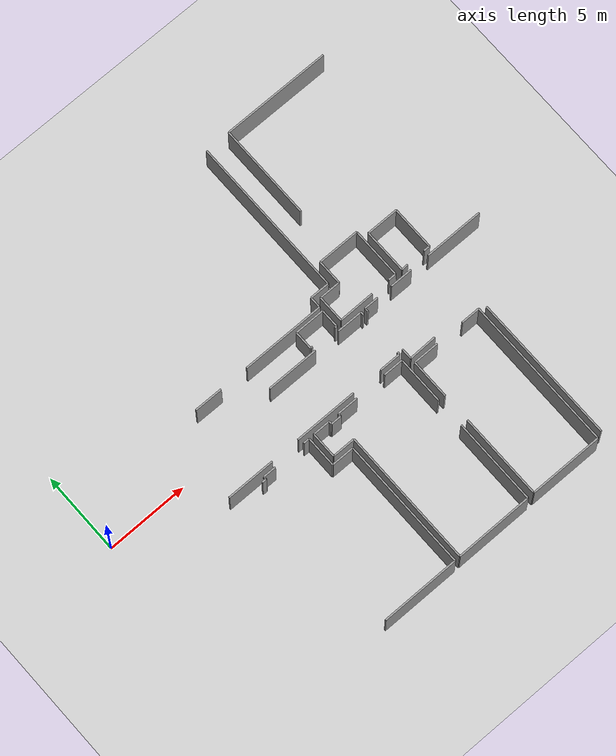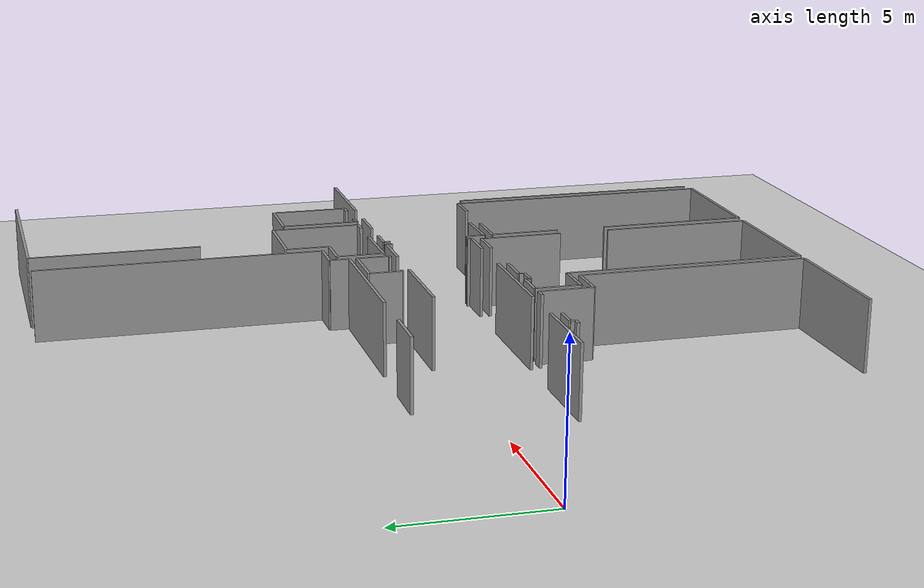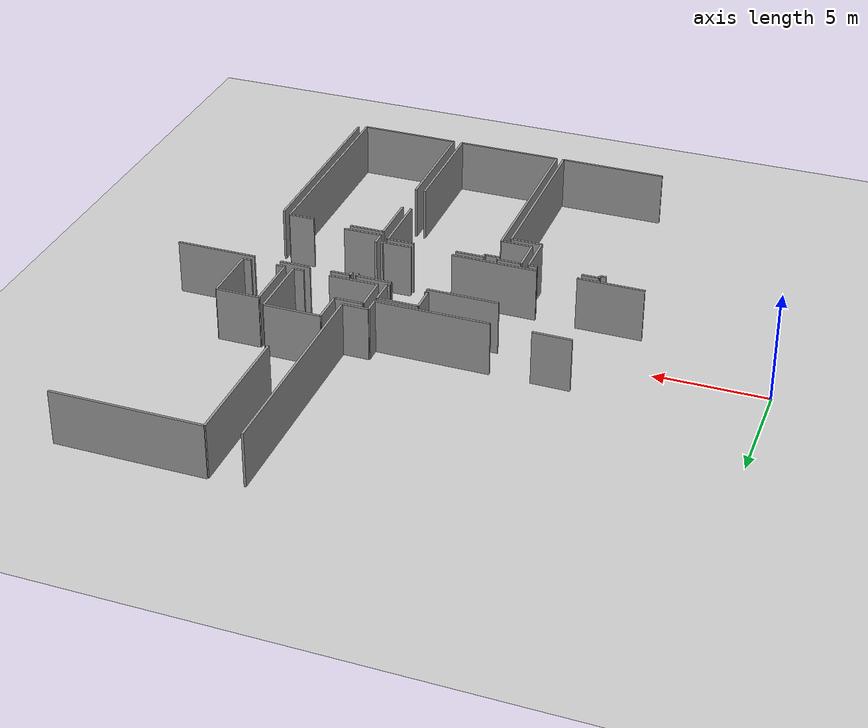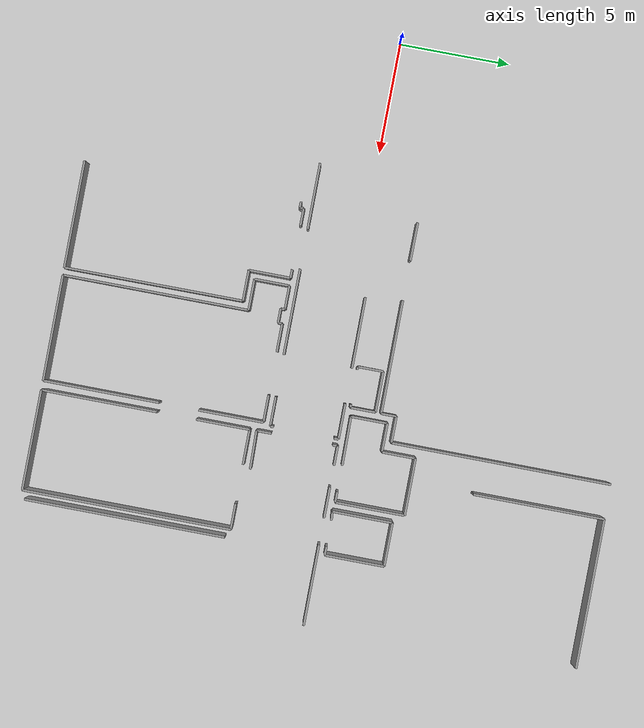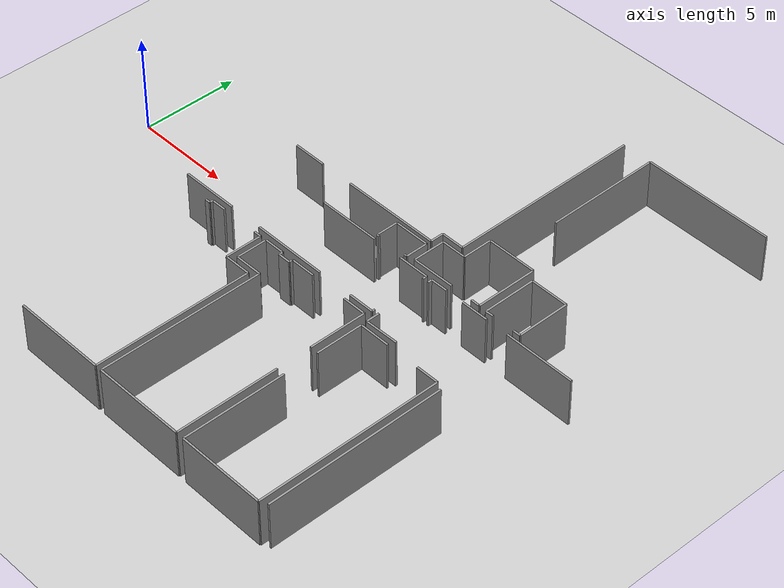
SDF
<sdf version="1.6">
 <world name="default">
  <model name="ground_plane">
   <static>1</static>
   <link name="link">
    <collision name="collision">
     <geometry><plane><normal>0 0 1</normal><size>100 100</size></plane></geometry>
     <surface><friction><ode><mu>100</mu><mu2>50</mu2></ode></friction></surface>
    </collision>
    <visual name="visual">
     <cast_shadows>0</cast_shadows>
     <geometry><plane><normal>0 0 1</normal><size>100 100</size></plane></geometry>
     <material>
      <script><uri>file://media/materials/scripts/gazebo.material</uri><name>Gazebo/Grey</name></script>
     </material>
    </visual>
   </link>
  </model>
  <model name="0510030965_A-40">
   <static>1</static>
   <link name="Wall_73">
    <collision name="Wall_73_Collision">
     <geometry><box><size>3.2132109253 0.1 2.5</size></box></geometry>
     <pose>1.60660546265 0 1.25 0 0 0</pose>
    </collision>
    <visual name="Wall_73_Visual">
     <pose>1.60660546265 0 1.25 0 0 0</pose>
     <geometry><box><size>3.2132109253 0.1 2.5</size></box></geometry>
     <material>
      <script><uri>file://media/materials/scripts/gazebo.material</uri><name>Gazebo/Grey</name></script>
      <ambient>1 1 1 1</ambient>
     </material>
    </visual>
    <pose>50.3034805023 -12.2852462763 0 0 0 0.0</pose>
   </link>
   <link name="Wall_74">
    <collision name="Wall_74_Collision">
     <geometry><box><size>1.61174812388 0.1 2.5</size></box></geometry>
     <pose>0.805874061941 0 1.25 0 0 0</pose>
    </collision>
    <visual name="Wall_74_Visual">
     <pose>0.805874061941 0 1.25 0 0 0</pose>
     <geometry><box><size>1.61174812388 0.1 2.5</size></box></geometry>
     <material>
      <script><uri>file://media/materials/scripts/gazebo.material</uri><name>Gazebo/Grey</name></script>
      <ambient>1 1 1 1</ambient>
     </material>
    </visual>
    <pose>55.1153606847 -12.2852462763 0 0 0 0.0</pose>
   </link>
   <link name="Wall_75">
    <collision name="Wall_75_Collision">
     <geometry><box><size>0.207103221465 0.1 2.5</size></box></geometry>
     <pose>0.103551610732 0 1.25 0 0 0</pose>
    </collision>
    <visual name="Wall_75_Visual">
     <pose>0.103551610732 0 1.25 0 0 0</pose>
     <geometry><box><size>0.207103221465 0.1 2.5</size></box></geometry>
     <material>
      <script><uri>file://media/materials/scripts/gazebo.material</uri><name>Gazebo/Grey</name></script>
      <ambient>1 1 1 1</ambient>
     </material>
    </visual>
    <pose>56.7271088086 -12.2852462763 0 0 0 -1.57079632679</pose>
   </link>
   <link name="Wall_76">
    <collision name="Wall_76_Collision">
     <geometry><box><size>0.152375147613 0.1 2.5</size></box></geometry>
     <pose>0.0761875738067 0 1.25 0 0 0</pose>
    </collision>
    <visual name="Wall_76_Visual">
     <pose>0.0761875738067 0 1.25 0 0 0</pose>
     <geometry><box><size>0.152375147613 0.1 2.5</size></box></geometry>
     <material>
      <script><uri>file://media/materials/scripts/gazebo.material</uri><name>Gazebo/Grey</name></script>
      <ambient>1 1 1 1</ambient>
     </material>
    </visual>
    <pose>56.7271088086 -15.2265945424 0 0 0 -1.57079632679</pose>
   </link>
   <link name="Wall_77">
    <collision name="Wall_77_Collision">
     <geometry><box><size>1.3372188996 0.1 2.5</size></box></geometry>
     <pose>0.668609449799 0 1.25 0 0 0</pose>
    </collision>
    <visual name="Wall_77_Visual">
     <pose>0.668609449799 0 1.25 0 0 0</pose>
     <geometry><box><size>1.3372188996 0.1 2.5</size></box></geometry>
     <material>
      <script><uri>file://media/materials/scripts/gazebo.material</uri><name>Gazebo/Grey</name></script>
      <ambient>1 1 1 1</ambient>
     </material>
    </visual>
    <pose>56.7271088086 -15.37896969 0 0 0 3.14159265359</pose>
   </link>
   <link name="Wall_78">
    <collision name="Wall_78_Collision">
     <geometry><box><size>3.88861376709 0.1 2.5</size></box></geometry>
     <pose>1.94430688355 0 1.25 0 0 0</pose>
    </collision>
    <visual name="Wall_78_Visual">
     <pose>1.94430688355 0 1.25 0 0 0</pose>
     <geometry><box><size>3.88861376709 0.1 2.5</size></box></geometry>
     <material>
      <script><uri>file://media/materials/scripts/gazebo.material</uri><name>Gazebo/Grey</name></script>
      <ambient>1 1 1 1</ambient>
     </material>
    </visual>
    <pose>53.4897718182 -15.37896969 0 0 0 3.14159265359</pose>
   </link>
   <link name="Wall_79">
    <collision name="Wall_79_Collision">
     <geometry><box><size>2.98121976306 0.1 2.5</size></box></geometry>
     <pose>1.49060988153 0 1.25 0 0 0</pose>
    </collision>
    <visual name="Wall_79_Visual">
     <pose>1.49060988153 0 1.25 0 0 0</pose>
     <geometry><box><size>2.98121976306 0.1 2.5</size></box></geometry>
     <material>
      <script><uri>file://media/materials/scripts/gazebo.material</uri><name>Gazebo/Grey</name></script>
      <ambient>1 1 1 1</ambient>
     </material>
    </visual>
    <pose>47.7970363034 -15.37896969 0 0 0 3.14159265359</pose>
   </link>
   <link name="Wall_130">
    <collision name="Wall_130_Collision">
     <geometry><box><size>4.8357522888 0.1 2.5</size></box></geometry>
     <pose>2.4178761444 0 1.25 0 0 0</pose>
    </collision>
    <visual name="Wall_130_Visual">
     <pose>2.4178761444 0 1.25 0 0 0</pose>
     <geometry><box><size>4.8357522888 0.1 2.5</size></box></geometry>
     <material>
      <script><uri>file://media/materials/scripts/gazebo.material</uri><name>Gazebo/Grey</name></script>
      <ambient>1 1 1 1</ambient>
     </material>
    </visual>
    <pose>51.497847701 -25.6943862456 0 0 0 3.14159265359</pose>
   </link>
   <link name="Wall_132">
    <collision name="Wall_132_Collision">
     <geometry><box><size>0.2681802598 0.1 2.5</size></box></geometry>
     <pose>0.1340901299 0 1.25 0 0 0</pose>
    </collision>
    <visual name="Wall_132_Visual">
     <pose>0.1340901299 0 1.25 0 0 0</pose>
     <geometry><box><size>0.2681802598 0.1 2.5</size></box></geometry>
     <material>
      <script><uri>file://media/materials/scripts/gazebo.material</uri><name>Gazebo/Grey</name></script>
      <ambient>1 1 1 1</ambient>
     </material>
    </visual>
    <pose>46.6620954122 -15.8969182126 0 0 0 0.0</pose>
   </link>
   <link name="Wall_133">
    <collision name="Wall_133_Collision">
     <geometry><box><size>0.174088606148 0.1 2.5</size></box></geometry>
     <pose>0.0870443030742 0 1.25 0 0 0</pose>
    </collision>
    <visual name="Wall_133_Visual">
     <pose>0.0870443030742 0 1.25 0 0 0</pose>
     <geometry><box><size>0.174088606148 0.1 2.5</size></box></geometry>
     <material>
      <script><uri>file://media/materials/scripts/gazebo.material</uri><name>Gazebo/Grey</name></script>
      <ambient>1 1 1 1</ambient>
     </material>
    </visual>
    <pose>46.930275672 -15.8969182126 0 0 0 1.57079632679</pose>
   </link>
   <link name="Wall_134">
    <collision name="Wall_134_Collision">
     <geometry><box><size>0.778383045725 0.1 2.5</size></box></geometry>
     <pose>0.389191522863 0 1.25 0 0 0</pose>
    </collision>
    <visual name="Wall_134_Visual">
     <pose>0.389191522863 0 1.25 0 0 0</pose>
     <geometry><box><size>0.778383045725 0.1 2.5</size></box></geometry>
     <material>
      <script><uri>file://media/materials/scripts/gazebo.material</uri><name>Gazebo/Grey</name></script>
      <ambient>1 1 1 1</ambient>
     </material>
    </visual>
    <pose>46.930275672 -15.7228296065 0 0 0 0.0</pose>
   </link>
   <link name="Wall_135">
    <collision name="Wall_135_Collision">
     <geometry><box><size>0.391985067236 0.1 2.5</size></box></geometry>
     <pose>0.195992533618 0 1.25 0 0 0</pose>
    </collision>
    <visual name="Wall_135_Visual">
     <pose>0.195992533618 0 1.25 0 0 0</pose>
     <geometry><box><size>0.391985067236 0.1 2.5</size></box></geometry>
     <material>
      <script><uri>file://media/materials/scripts/gazebo.material</uri><name>Gazebo/Grey</name></script>
      <ambient>1 1 1 1</ambient>
     </material>
    </visual>
    <pose>49.6920752225 -15.7228296065 0 0 0 0.0</pose>
   </link>
   <link name="Wall_136">
    <collision name="Wall_136_Collision">
     <geometry><box><size>1.88691224461 0.1 2.5</size></box></geometry>
     <pose>0.943456122306 0 1.25 0 0 0</pose>
    </collision>
    <visual name="Wall_136_Visual">
     <pose>0.943456122306 0 1.25 0 0 0</pose>
     <geometry><box><size>1.88691224461 0.1 2.5</size></box></geometry>
     <material>
      <script><uri>file://media/materials/scripts/gazebo.material</uri><name>Gazebo/Grey</name></script>
      <ambient>1 1 1 1</ambient>
     </material>
    </visual>
    <pose>50.0840602898 -15.7228296065 0 0 0 -1.57079632679</pose>
   </link>
   <link name="Wall_137">
    <collision name="Wall_137_Collision">
     <geometry><box><size>1.39270884919 0.1 2.5</size></box></geometry>
     <pose>0.696354424593 0 1.25 0 0 0</pose>
    </collision>
    <visual name="Wall_137_Visual">
     <pose>0.696354424593 0 1.25 0 0 0</pose>
     <geometry><box><size>1.39270884919 0.1 2.5</size></box></geometry>
     <material>
      <script><uri>file://media/materials/scripts/gazebo.material</uri><name>Gazebo/Grey</name></script>
      <ambient>1 1 1 1</ambient>
     </material>
    </visual>
    <pose>50.0840602898 -17.6097418511 0 0 0 0.0</pose>
   </link>
   <link name="Wall_138">
    <collision name="Wall_138_Collision">
     <geometry><box><size>8.08467187283 0.1 2.5</size></box></geometry>
     <pose>4.04233593641 0 1.25 0 0 0</pose>
    </collision>
    <visual name="Wall_138_Visual">
     <pose>4.04233593641 0 1.25 0 0 0</pose>
     <geometry><box><size>8.08467187283 0.1 2.5</size></box></geometry>
     <material>
      <script><uri>file://media/materials/scripts/gazebo.material</uri><name>Gazebo/Grey</name></script>
      <ambient>1 1 1 1</ambient>
     </material>
    </visual>
    <pose>51.476769139 -17.6097418511 0 0 0 -1.56818909841</pose>
   </link>
   <link name="Wall_139">
    <collision name="Wall_139_Collision">
     <geometry><box><size>8.4032354323 0.1 2.5</size></box></geometry>
     <pose>4.20161771615 0 1.25 0 0 0</pose>
    </collision>
    <visual name="Wall_139_Visual">
     <pose>4.20161771615 0 1.25 0 0 0</pose>
     <geometry><box><size>8.4032354323 0.1 2.5</size></box></geometry>
     <material>
      <script><uri>file://media/materials/scripts/gazebo.material</uri><name>Gazebo/Grey</name></script>
      <ambient>1 1 1 1</ambient>
     </material>
    </visual>
    <pose>51.8382791767 -25.6908308255 0 0 0 1.57079632679</pose>
   </link>
   <link name="Wall_140">
    <collision name="Wall_140_Collision">
     <geometry><box><size>1.41137480477 0.1 2.5</size></box></geometry>
     <pose>0.705687402385 0 1.25 0 0 0</pose>
    </collision>
    <visual name="Wall_140_Visual">
     <pose>0.705687402385 0 1.25 0 0 0</pose>
     <geometry><box><size>1.41137480477 0.1 2.5</size></box></geometry>
     <material>
      <script><uri>file://media/materials/scripts/gazebo.material</uri><name>Gazebo/Grey</name></script>
      <ambient>1 1 1 1</ambient>
     </material>
    </visual>
    <pose>51.8382791767 -17.2875953932 0 0 0 3.14159265359</pose>
   </link>
   <link name="Wall_141">
    <collision name="Wall_141_Collision">
     <geometry><box><size>1.58051121862 0.1 2.5</size></box></geometry>
     <pose>0.79025560931 0 1.25 0 0 0</pose>
    </collision>
    <visual name="Wall_141_Visual">
     <pose>0.79025560931 0 1.25 0 0 0</pose>
     <geometry><box><size>1.58051121862 0.1 2.5</size></box></geometry>
     <material>
      <script><uri>file://media/materials/scripts/gazebo.material</uri><name>Gazebo/Grey</name></script>
      <ambient>1 1 1 1</ambient>
     </material>
    </visual>
    <pose>50.4269043719 -17.2875953932 0 0 0 1.57079632679</pose>
   </link>
   <link name="Wall_142">
    <collision name="Wall_142_Collision">
     <geometry><box><size>1.07094332914 0.1 2.5</size></box></geometry>
     <pose>0.535471664572 0 1.25 0 0 0</pose>
    </collision>
    <visual name="Wall_142_Visual">
     <pose>0.535471664572 0 1.25 0 0 0</pose>
     <geometry><box><size>1.07094332914 0.1 2.5</size></box></geometry>
     <material>
      <script><uri>file://media/materials/scripts/gazebo.material</uri><name>Gazebo/Grey</name></script>
      <ambient>1 1 1 1</ambient>
     </material>
    </visual>
    <pose>50.4269043719 -15.7070841746 0 0 0 0.0</pose>
   </link>
   <link name="Wall_143">
    <collision name="Wall_143_Collision">
     <geometry><box><size>0.18932612091 0.1 2.5</size></box></geometry>
     <pose>0.0946630604548 0 1.25 0 0 0</pose>
    </collision>
    <visual name="Wall_143_Visual">
     <pose>0.0946630604548 0 1.25 0 0 0</pose>
     <geometry><box><size>0.18932612091 0.1 2.5</size></box></geometry>
     <material>
      <script><uri>file://media/materials/scripts/gazebo.material</uri><name>Gazebo/Grey</name></script>
      <ambient>1 1 1 1</ambient>
     </material>
    </visual>
    <pose>51.497847701 -15.7070841746 0 0 0 -1.57079632679</pose>
   </link>
   <link name="Wall_144">
    <collision name="Wall_144_Collision">
     <geometry><box><size>0.644038957246 0.1 2.5</size></box></geometry>
     <pose>0.322019478623 0 1.25 0 0 0</pose>
    </collision>
    <visual name="Wall_144_Visual">
     <pose>0.322019478623 0 1.25 0 0 0</pose>
     <geometry><box><size>0.644038957246 0.1 2.5</size></box></geometry>
     <material>
      <script><uri>file://media/materials/scripts/gazebo.material</uri><name>Gazebo/Grey</name></script>
      <ambient>1 1 1 1</ambient>
     </material>
    </visual>
    <pose>51.497847701 -15.8964102955 0 0 0 0.0</pose>
   </link>
   <link name="Wall_145">
    <collision name="Wall_145_Collision">
     <geometry><box><size>0.18932612091 0.1 2.5</size></box></geometry>
     <pose>0.0946630604548 0 1.25 0 0 0</pose>
    </collision>
    <visual name="Wall_145_Visual">
     <pose>0.0946630604548 0 1.25 0 0 0</pose>
     <geometry><box><size>0.18932612091 0.1 2.5</size></box></geometry>
     <material>
      <script><uri>file://media/materials/scripts/gazebo.material</uri><name>Gazebo/Grey</name></script>
      <ambient>1 1 1 1</ambient>
     </material>
    </visual>
    <pose>52.1418866583 -15.8964102955 0 0 0 1.57079632679</pose>
   </link>
   <link name="Wall_146">
    <collision name="Wall_146_Collision">
     <geometry><box><size>1.28782395591 0.1 2.5</size></box></geometry>
     <pose>0.643911977956 0 1.25 0 0 0</pose>
    </collision>
    <visual name="Wall_146_Visual">
     <pose>0.643911977956 0 1.25 0 0 0</pose>
     <geometry><box><size>1.28782395591 0.1 2.5</size></box></geometry>
     <material>
      <script><uri>file://media/materials/scripts/gazebo.material</uri><name>Gazebo/Grey</name></script>
      <ambient>1 1 1 1</ambient>
     </material>
    </visual>
    <pose>52.1418866583 -15.7070841746 0 0 0 0.0</pose>
   </link>
   <link name="Wall_147">
    <collision name="Wall_147_Collision">
     <geometry><box><size>1.23741317791 0.1 2.5</size></box></geometry>
     <pose>0.618706588955 0 1.25 0 0 0</pose>
    </collision>
    <visual name="Wall_147_Visual">
     <pose>0.618706588955 0 1.25 0 0 0</pose>
     <geometry><box><size>1.23741317791 0.1 2.5</size></box></geometry>
     <material>
      <script><uri>file://media/materials/scripts/gazebo.material</uri><name>Gazebo/Grey</name></script>
      <ambient>1 1 1 1</ambient>
     </material>
    </visual>
    <pose>55.374144477 -15.7070841746 0 0 0 0.0</pose>
   </link>
   <link name="Wall_148">
    <collision name="Wall_148_Collision">
     <geometry><box><size>2.93436440517 0.1 2.5</size></box></geometry>
     <pose>1.46718220258 0 1.25 0 0 0</pose>
    </collision>
    <visual name="Wall_148_Visual">
     <pose>1.46718220258 0 1.25 0 0 0</pose>
     <geometry><box><size>2.93436440517 0.1 2.5</size></box></geometry>
     <material>
      <script><uri>file://media/materials/scripts/gazebo.material</uri><name>Gazebo/Grey</name></script>
      <ambient>1 1 1 1</ambient>
     </material>
    </visual>
    <pose>56.6115576549 -15.7070841746 0 0 0 -1.57079632679</pose>
   </link>
   <link name="Wall_149">
    <collision name="Wall_149_Collision">
     <geometry><box><size>5.24322882938 0.1 2.5</size></box></geometry>
     <pose>2.62161441469 0 1.25 0 0 0</pose>
    </collision>
    <visual name="Wall_149_Visual">
     <pose>2.62161441469 0 1.25 0 0 0</pose>
     <geometry><box><size>5.24322882938 0.1 2.5</size></box></geometry>
     <material>
      <script><uri>file://media/materials/scripts/gazebo.material</uri><name>Gazebo/Grey</name></script>
      <ambient>1 1 1 1</ambient>
     </material>
    </visual>
    <pose>56.6115576549 -20.4385864665 0 0 0 -1.57079632679</pose>
   </link>
   <link name="Wall_150">
    <collision name="Wall_150_Collision">
     <geometry><box><size>4.77328699231 0.1 2.5</size></box></geometry>
     <pose>2.38664349616 0 1.25 0 0 0</pose>
    </collision>
    <visual name="Wall_150_Visual">
     <pose>2.38664349616 0 1.25 0 0 0</pose>
     <geometry><box><size>4.77328699231 0.1 2.5</size></box></geometry>
     <material>
      <script><uri>file://media/materials/scripts/gazebo.material</uri><name>Gazebo/Grey</name></script>
      <ambient>1 1 1 1</ambient>
     </material>
    </visual>
    <pose>56.6115576549 -25.6818152959 0 0 0 -3.13970390587</pose>
   </link>
   <link name="Wall_151">
    <collision name="Wall_151_Collision">
     <geometry><box><size>5.23586403058 0.1 2.5</size></box></geometry>
     <pose>2.61793201529 0 1.25 0 0 0</pose>
    </collision>
    <visual name="Wall_151_Visual">
     <pose>2.61793201529 0 1.25 0 0 0</pose>
     <geometry><box><size>5.23586403058 0.1 2.5</size></box></geometry>
     <material>
      <script><uri>file://media/materials/scripts/gazebo.material</uri><name>Gazebo/Grey</name></script>
      <ambient>1 1 1 1</ambient>
     </material>
    </visual>
    <pose>57.0382080683 -25.6818152959 0 0 0 1.57079632679</pose>
   </link>
   <link name="Wall_152">
    <collision name="Wall_152_Collision">
     <geometry><box><size>2.41946338552 0.1 2.5</size></box></geometry>
     <pose>1.20973169276 0 1.25 0 0 0</pose>
    </collision>
    <visual name="Wall_152_Visual">
     <pose>1.20973169276 0 1.25 0 0 0</pose>
     <geometry><box><size>2.41946338552 0.1 2.5</size></box></geometry>
     <material>
      <script><uri>file://media/materials/scripts/gazebo.material</uri><name>Gazebo/Grey</name></script>
      <ambient>1 1 1 1</ambient>
     </material>
    </visual>
    <pose>57.0382080683 -18.6701458992 0 0 0 1.57079632679</pose>
   </link>
   <link name="Wall_153">
    <collision name="Wall_153_Collision">
     <geometry><box><size>1.58838393458 0.1 2.5</size></box></geometry>
     <pose>0.79419196729 0 1.25 0 0 0</pose>
    </collision>
    <visual name="Wall_153_Visual">
     <pose>0.79419196729 0 1.25 0 0 0</pose>
     <geometry><box><size>1.58838393458 0.1 2.5</size></box></geometry>
     <material>
      <script><uri>file://media/materials/scripts/gazebo.material</uri><name>Gazebo/Grey</name></script>
      <ambient>1 1 1 1</ambient>
     </material>
    </visual>
    <pose>57.0382080683 -16.2506825137 0 0 0 0.0</pose>
   </link>
   <link name="Wall_154">
    <collision name="Wall_154_Collision">
     <geometry><box><size>1.17620916029 0.1 2.5</size></box></geometry>
     <pose>0.588104580143 0 1.25 0 0 0</pose>
    </collision>
    <visual name="Wall_154_Visual">
     <pose>0.588104580143 0 1.25 0 0 0</pose>
     <geometry><box><size>1.17620916029 0.1 2.5</size></box></geometry>
     <material>
      <script><uri>file://media/materials/scripts/gazebo.material</uri><name>Gazebo/Grey</name></script>
      <ambient>1 1 1 1</ambient>
     </material>
    </visual>
    <pose>60.3933818394 -16.2506825137 0 0 0 0.0</pose>
   </link>
   <link name="Wall_155">
    <collision name="Wall_155_Collision">
     <geometry><box><size>9.4390054982 0.1 2.5</size></box></geometry>
     <pose>4.7195027491 0 1.25 0 0 0</pose>
    </collision>
    <visual name="Wall_155_Visual">
     <pose>4.7195027491 0 1.25 0 0 0</pose>
     <geometry><box><size>9.4390054982 0.1 2.5</size></box></geometry>
     <material>
      <script><uri>file://media/materials/scripts/gazebo.material</uri><name>Gazebo/Grey</name></script>
      <ambient>1 1 1 1</ambient>
     </material>
    </visual>
    <pose>61.5695909997 -16.2506825137 0 0 0 -1.57079632679</pose>
   </link>
   <link name="Wall_156">
    <collision name="Wall_156_Collision">
     <geometry><box><size>4.53138977037 0.1 2.5</size></box></geometry>
     <pose>2.26569488519 0 1.25 0 0 0</pose>
    </collision>
    <visual name="Wall_156_Visual">
     <pose>2.26569488519 0 1.25 0 0 0</pose>
     <geometry><box><size>4.53138977037 0.1 2.5</size></box></geometry>
     <material>
      <script><uri>file://media/materials/scripts/gazebo.material</uri><name>Gazebo/Grey</name></script>
      <ambient>1 1 1 1</ambient>
     </material>
    </visual>
    <pose>61.5695909997 -25.6896880119 0 0 0 3.13985527934</pose>
   </link>
   <link name="Wall_157">
    <collision name="Wall_157_Collision">
     <geometry><box><size>0.673498152451 0.1 2.5</size></box></geometry>
     <pose>0.336749076226 0 1.25 0 0 0</pose>
    </collision>
    <visual name="Wall_157_Visual">
     <pose>0.336749076226 0 1.25 0 0 0</pose>
     <geometry><box><size>0.673498152451 0.1 2.5</size></box></geometry>
     <material>
      <script><uri>file://media/materials/scripts/gazebo.material</uri><name>Gazebo/Grey</name></script>
      <ambient>1 1 1 1</ambient>
     </material>
    </visual>
    <pose>57.0279227458 -15.9409800262 0 0 0 1.57079632679</pose>
   </link>
   <link name="Wall_158">
    <collision name="Wall_158_Collision">
     <geometry><box><size>0.231864182952 0.1 2.5</size></box></geometry>
     <pose>0.115932091476 0 1.25 0 0 0</pose>
    </collision>
    <visual name="Wall_158_Visual">
     <pose>0.115932091476 0 1.25 0 0 0</pose>
     <geometry><box><size>0.231864182952 0.1 2.5</size></box></geometry>
     <material>
      <script><uri>file://media/materials/scripts/gazebo.material</uri><name>Gazebo/Grey</name></script>
      <ambient>1 1 1 1</ambient>
     </material>
    </visual>
    <pose>57.0279227458 -12.4960318972 0 0 0 1.57079632679</pose>
   </link>
   <link name="Wall_159">
    <collision name="Wall_159_Collision">
     <geometry><box><size>0.883394918289 0.1 2.5</size></box></geometry>
     <pose>0.441697459144 0 1.25 0 0 0</pose>
    </collision>
    <visual name="Wall_159_Visual">
     <pose>0.441697459144 0 1.25 0 0 0</pose>
     <geometry><box><size>0.883394918289 0.1 2.5</size></box></geometry>
     <material>
      <script><uri>file://media/materials/scripts/gazebo.material</uri><name>Gazebo/Grey</name></script>
      <ambient>1 1 1 1</ambient>
     </material>
    </visual>
    <pose>57.0279227458 -12.2641677142 0 0 0 0.0</pose>
   </link>
   <link name="Wall_160">
    <collision name="Wall_160_Collision">
     <geometry><box><size>1.41327949411 0.1 2.5</size></box></geometry>
     <pose>0.706639747057 0 1.25 0 0 0</pose>
    </collision>
    <visual name="Wall_160_Visual">
     <pose>0.706639747057 0 1.25 0 0 0</pose>
     <geometry><box><size>1.41327949411 0.1 2.5</size></box></geometry>
     <material>
      <script><uri>file://media/materials/scripts/gazebo.material</uri><name>Gazebo/Grey</name></script>
      <ambient>1 1 1 1</ambient>
     </material>
    </visual>
    <pose>58.8829631887 -12.2641677142 0 0 0 0.0</pose>
   </link>
   <link name="Wall_161">
    <collision name="Wall_161_Collision">
     <geometry><box><size>3.66170177644 0.1 2.5</size></box></geometry>
     <pose>1.83085088822 0 1.25 0 0 0</pose>
    </collision>
    <visual name="Wall_161_Visual">
     <pose>1.83085088822 0 1.25 0 0 0</pose>
     <geometry><box><size>3.66170177644 0.1 2.5</size></box></geometry>
     <material>
      <script><uri>file://media/materials/scripts/gazebo.material</uri><name>Gazebo/Grey</name></script>
      <ambient>1 1 1 1</ambient>
     </material>
    </visual>
    <pose>61.5041966655 -12.2641677142 0 0 0 0.0</pose>
   </link>
   <link name="Wall_176">
    <collision name="Wall_176_Collision">
     <geometry><box><size>1.7401087117 0.1 2.5</size></box></geometry>
     <pose>0.870054355849 0 1.25 0 0 0</pose>
    </collision>
    <visual name="Wall_176_Visual">
     <pose>0.870054355849 0 1.25 0 0 0</pose>
     <geometry><box><size>1.7401087117 0.1 2.5</size></box></geometry>
     <material>
      <script><uri>file://media/materials/scripts/gazebo.material</uri><name>Gazebo/Grey</name></script>
      <ambient>1 1 1 1</ambient>
     </material>
    </visual>
    <pose>58.7675390144 -15.8995847777 0 0 0 -3.1178015229</pose>
   </link>
   <link name="Wall_177">
    <collision name="Wall_177_Collision">
     <geometry><box><size>9.08193973563 0.1 2.5</size></box></geometry>
     <pose>4.54096986781 0 1.25 0 0 0</pose>
    </collision>
    <visual name="Wall_177_Visual">
     <pose>4.54096986781 0 1.25 0 0 0</pose>
     <geometry><box><size>9.08193973563 0.1 2.5</size></box></geometry>
     <material>
      <script><uri>file://media/materials/scripts/gazebo.material</uri><name>Gazebo/Grey</name></script>
      <ambient>1 1 1 1</ambient>
     </material>
    </visual>
    <pose>61.9547191853 -25.5246149353 0 0 0 1.57079632679</pose>
   </link>
   <link name="Wall_222">
    <collision name="Wall_222_Collision">
     <geometry><box><size>5.91266364456 0.1 2.5</size></box></geometry>
     <pose>2.95633182228 0 1.25 0 0 0</pose>
    </collision>
    <visual name="Wall_222_Visual">
     <pose>2.95633182228 0 1.25 0 0 0</pose>
     <geometry><box><size>5.91266364456 0.1 2.5</size></box></geometry>
     <material>
      <script><uri>file://media/materials/scripts/gazebo.material</uri><name>Gazebo/Grey</name></script>
      <ambient>1 1 1 1</ambient>
     </material>
    </visual>
    <pose>58.0183612053 -5.91901260904 0 0 0 1.57079632679</pose>
   </link>
   <link name="Wall_223">
    <collision name="Wall_223_Collision">
     <geometry><box><size>6.7560600866 0.1 2.5</size></box></geometry>
     <pose>3.3780300433 0 1.25 0 0 0</pose>
    </collision>
    <visual name="Wall_223_Visual">
     <pose>3.3780300433 0 1.25 0 0 0</pose>
     <geometry><box><size>6.7560600866 0.1 2.5</size></box></geometry>
     <material>
      <script><uri>file://media/materials/scripts/gazebo.material</uri><name>Gazebo/Grey</name></script>
      <ambient>1 1 1 1</ambient>
     </material>
    </visual>
    <pose>58.0183612053 -0.00634896448389 0 0 0 0.0</pose>
   </link>
   <link name="Wall_227">
    <collision name="Wall_227_Collision">
     <geometry><box><size>2.71342044113 0.1 2.5</size></box></geometry>
     <pose>1.35671022056 0 1.25 0 0 0</pose>
    </collision>
    <visual name="Wall_227_Visual">
     <pose>1.35671022056 0 1.25 0 0 0</pose>
     <geometry><box><size>2.71342044113 0.1 2.5</size></box></geometry>
     <material>
      <script><uri>file://media/materials/scripts/gazebo.material</uri><name>Gazebo/Grey</name></script>
      <ambient>1 1 1 1</ambient>
     </material>
    </visual>
    <pose>59.9352405623 -11.9474813658 0 0 0 1.57079632679</pose>
   </link>
   <link name="Wall_228">
    <collision name="Wall_228_Collision">
     <geometry><box><size>1.97046461722 0.1 2.5</size></box></geometry>
     <pose>0.98523230861 0 1.25 0 0 0</pose>
    </collision>
    <visual name="Wall_228_Visual">
     <pose>0.98523230861 0 1.25 0 0 0</pose>
     <geometry><box><size>1.97046461722 0.1 2.5</size></box></geometry>
     <material>
      <script><uri>file://media/materials/scripts/gazebo.material</uri><name>Gazebo/Grey</name></script>
      <ambient>1 1 1 1</ambient>
     </material>
    </visual>
    <pose>59.9352405623 -9.23406092466 0 0 0 0.0</pose>
   </link>
   <link name="Wall_229">
    <collision name="Wall_229_Collision">
     <geometry><box><size>2.68840552106 0.1 2.5</size></box></geometry>
     <pose>1.34420276053 0 1.25 0 0 0</pose>
    </collision>
    <visual name="Wall_229_Visual">
     <pose>1.34420276053 0 1.25 0 0 0</pose>
     <geometry><box><size>2.68840552106 0.1 2.5</size></box></geometry>
     <material>
      <script><uri>file://media/materials/scripts/gazebo.material</uri><name>Gazebo/Grey</name></script>
      <ambient>1 1 1 1</ambient>
     </material>
    </visual>
    <pose>61.9057051795 -9.23406092466 0 0 0 -1.57079632679</pose>
   </link>
   <link name="Wall_230">
    <collision name="Wall_230_Collision">
     <geometry><box><size>0.388937564283 0.1 2.5</size></box></geometry>
     <pose>0.194468782142 0 1.25 0 0 0</pose>
    </collision>
    <visual name="Wall_230_Visual">
     <pose>0.194468782142 0 1.25 0 0 0</pose>
     <geometry><box><size>0.388937564283 0.1 2.5</size></box></geometry>
     <material>
      <script><uri>file://media/materials/scripts/gazebo.material</uri><name>Gazebo/Grey</name></script>
      <ambient>1 1 1 1</ambient>
     </material>
    </visual>
    <pose>61.9057051795 -11.9224664457 0 0 0 3.14159265359</pose>
   </link>
   <link name="Wall_231">
    <collision name="Wall_231_Collision">
     <geometry><box><size>0.40089294348 0.1 2.5</size></box></geometry>
     <pose>0.20044647174 0 1.25 0 0 0</pose>
    </collision>
    <visual name="Wall_231_Visual">
     <pose>0.20044647174 0 1.25 0 0 0</pose>
     <geometry><box><size>0.40089294348 0.1 2.5</size></box></geometry>
     <material>
      <script><uri>file://media/materials/scripts/gazebo.material</uri><name>Gazebo/Grey</name></script>
      <ambient>1 1 1 1</ambient>
     </material>
    </visual>
    <pose>60.335352304 -11.9224664457 0 0 0 -3.07915408582</pose>
   </link>
   <link name="Wall_232">
    <collision name="Wall_232_Collision">
     <geometry><box><size>1.65136566226 0.1 2.5</size></box></geometry>
     <pose>0.82568283113 0 1.25 0 0 0</pose>
    </collision>
    <visual name="Wall_232_Visual">
     <pose>0.82568283113 0 1.25 0 0 0</pose>
     <geometry><box><size>1.65136566226 0.1 2.5</size></box></geometry>
     <material>
      <script><uri>file://media/materials/scripts/gazebo.material</uri><name>Gazebo/Grey</name></script>
      <ambient>1 1 1 1</ambient>
     </material>
    </visual>
    <pose>55.6308966008 -11.9299582238 0 0 0 1.57079632679</pose>
   </link>
   <link name="Wall_233">
    <collision name="Wall_233_Collision">
     <geometry><box><size>1.29620458903 0.1 2.5</size></box></geometry>
     <pose>0.648102294516 0 1.25 0 0 0</pose>
    </collision>
    <visual name="Wall_233_Visual">
     <pose>0.648102294516 0 1.25 0 0 0</pose>
     <geometry><box><size>1.29620458903 0.1 2.5</size></box></geometry>
     <material>
      <script><uri>file://media/materials/scripts/gazebo.material</uri><name>Gazebo/Grey</name></script>
      <ambient>1 1 1 1</ambient>
     </material>
    </visual>
    <pose>55.6308966008 -10.2785925616 0 0 0 0.0</pose>
   </link>
   <link name="Wall_234">
    <collision name="Wall_234_Collision">
     <geometry><box><size>1.51714855307 0.1 2.5</size></box></geometry>
     <pose>0.758574276535 0 1.25 0 0 0</pose>
    </collision>
    <visual name="Wall_234_Visual">
     <pose>0.758574276535 0 1.25 0 0 0</pose>
     <geometry><box><size>1.51714855307 0.1 2.5</size></box></geometry>
     <material>
      <script><uri>file://media/materials/scripts/gazebo.material</uri><name>Gazebo/Grey</name></script>
      <ambient>1 1 1 1</ambient>
     </material>
    </visual>
    <pose>56.9271011898 -10.2785925616 0 0 0 1.57079632679</pose>
   </link>
   <link name="Wall_235">
    <collision name="Wall_235_Collision">
     <geometry><box><size>2.58275875205 0.1 2.5</size></box></geometry>
     <pose>1.29137937602 0 1.25 0 0 0</pose>
    </collision>
    <visual name="Wall_235_Visual">
     <pose>1.29137937602 0 1.25 0 0 0</pose>
     <geometry><box><size>2.58275875205 0.1 2.5</size></box></geometry>
     <material>
      <script><uri>file://media/materials/scripts/gazebo.material</uri><name>Gazebo/Grey</name></script>
      <ambient>1 1 1 1</ambient>
     </material>
    </visual>
    <pose>56.9271011898 -8.76144400848 0 0 0 0.0</pose>
   </link>
   <link name="Wall_236">
    <collision name="Wall_236_Collision">
     <geometry><box><size>3.14438815029 0.1 2.5</size></box></geometry>
     <pose>1.57219407515 0 1.25 0 0 0</pose>
    </collision>
    <visual name="Wall_236_Visual">
     <pose>1.57219407515 0 1.25 0 0 0</pose>
     <geometry><box><size>3.14438815029 0.1 2.5</size></box></geometry>
     <material>
      <script><uri>file://media/materials/scripts/gazebo.material</uri><name>Gazebo/Grey</name></script>
      <ambient>1 1 1 1</ambient>
     </material>
    </visual>
    <pose>59.5098599418 -8.76144400848 0 0 0 -1.57079632679</pose>
   </link>
   <link name="Wall_237">
    <collision name="Wall_237_Collision">
     <geometry><box><size>0.4846799487 0.1 2.5</size></box></geometry>
     <pose>0.24233997435 0 1.25 0 0 0</pose>
    </collision>
    <visual name="Wall_237_Visual">
     <pose>0.24233997435 0 1.25 0 0 0</pose>
     <geometry><box><size>0.4846799487 0.1 2.5</size></box></geometry>
     <material>
      <script><uri>file://media/materials/scripts/gazebo.material</uri><name>Gazebo/Grey</name></script>
      <ambient>1 1 1 1</ambient>
     </material>
    </visual>
    <pose>59.5098599418 -11.9058321588 0 0 0 3.14159265359</pose>
   </link>
   <link name="Wall_238">
    <collision name="Wall_238_Collision">
     <geometry><box><size>2.21439628523 0.1 2.5</size></box></geometry>
     <pose>1.10719814261 0 1.25 0 0 0</pose>
    </collision>
    <visual name="Wall_238_Visual">
     <pose>1.10719814261 0 1.25 0 0 0</pose>
     <geometry><box><size>2.21439628523 0.1 2.5</size></box></geometry>
     <material>
      <script><uri>file://media/materials/scripts/gazebo.material</uri><name>Gazebo/Grey</name></script>
      <ambient>1 1 1 1</ambient>
     </material>
    </visual>
    <pose>57.8451614542 -11.9058321588 0 0 0 -3.13069733981</pose>
   </link>
   <link name="Wall_239">
    <collision name="Wall_239_Collision">
     <geometry><box><size>1.14090891776 0.1 2.5</size></box></geometry>
     <pose>0.570454458878 0 1.25 0 0 0</pose>
    </collision>
    <visual name="Wall_239_Visual">
     <pose>0.570454458878 0 1.25 0 0 0</pose>
     <geometry><box><size>1.14090891776 0.1 2.5</size></box></geometry>
     <material>
      <script><uri>file://media/materials/scripts/gazebo.material</uri><name>Gazebo/Grey</name></script>
      <ambient>1 1 1 1</ambient>
     </material>
    </visual>
    <pose>53.394537351 -12.0301448834 0 0 0 1.57079632679</pose>
   </link>
   <link name="Wall_240">
    <collision name="Wall_240_Collision">
     <geometry><box><size>1.84742168552 0.1 2.5</size></box></geometry>
     <pose>0.923710842762 0 1.25 0 0 0</pose>
    </collision>
    <visual name="Wall_240_Visual">
     <pose>0.923710842762 0 1.25 0 0 0</pose>
     <geometry><box><size>1.84742168552 0.1 2.5</size></box></geometry>
     <material>
      <script><uri>file://media/materials/scripts/gazebo.material</uri><name>Gazebo/Grey</name></script>
      <ambient>1 1 1 1</ambient>
     </material>
    </visual>
    <pose>53.394537351 -10.8892359656 0 0 0 0.0</pose>
   </link>
   <link name="Wall_241">
    <collision name="Wall_241_Collision">
     <geometry><box><size>1.14090891776 0.1 2.5</size></box></geometry>
     <pose>0.570454458878 0 1.25 0 0 0</pose>
    </collision>
    <visual name="Wall_241_Visual">
     <pose>0.570454458878 0 1.25 0 0 0</pose>
     <geometry><box><size>1.14090891776 0.1 2.5</size></box></geometry>
     <material>
      <script><uri>file://media/materials/scripts/gazebo.material</uri><name>Gazebo/Grey</name></script>
      <ambient>1 1 1 1</ambient>
     </material>
    </visual>
    <pose>55.2419590365 -10.8892359656 0 0 0 -1.57079632679</pose>
   </link>
   <link name="Wall_242">
    <collision name="Wall_242_Collision">
     <geometry><box><size>0.143232638757 0.1 2.5</size></box></geometry>
     <pose>0.0716163193783 0 1.25 0 0 0</pose>
    </collision>
    <visual name="Wall_242_Visual">
     <pose>0.0716163193783 0 1.25 0 0 0</pose>
     <geometry><box><size>0.143232638757 0.1 2.5</size></box></geometry>
     <material>
      <script><uri>file://media/materials/scripts/gazebo.material</uri><name>Gazebo/Grey</name></script>
      <ambient>1 1 1 1</ambient>
     </material>
    </visual>
    <pose>55.2419590365 -12.0301448834 0 0 0 3.14159265359</pose>
   </link>
   <link name="Wall_243">
    <collision name="Wall_243_Collision">
     <geometry><box><size>0.133709192031 0.1 2.5</size></box></geometry>
     <pose>0.0668545960154 0 1.25 0 0 0</pose>
    </collision>
    <visual name="Wall_243_Visual">
     <pose>0.0668545960154 0 1.25 0 0 0</pose>
     <geometry><box><size>0.133709192031 0.1 2.5</size></box></geometry>
     <material>
      <script><uri>file://media/materials/scripts/gazebo.material</uri><name>Gazebo/Grey</name></script>
      <ambient>1 1 1 1</ambient>
     </material>
    </visual>
    <pose>53.528246543 -12.0301448834 0 0 0 3.14159265359</pose>
   </link>
   <link name="Wall_246">
    <collision name="Wall_246_Collision">
     <geometry><box><size>9.93739921019 0.1 2.5</size></box></geometry>
     <pose>4.96869960509 0 1.25 0 0 0</pose>
    </collision>
    <visual name="Wall_246_Visual">
     <pose>4.96869960509 0 1.25 0 0 0</pose>
     <geometry><box><size>9.93739921019 0.1 2.5</size></box></geometry>
     <material>
      <script><uri>file://media/materials/scripts/gazebo.material</uri><name>Gazebo/Grey</name></script>
      <ambient>1 1 1 1</ambient>
     </material>
    </visual>
    <pose>56.4473734334 -0.00634896448389 0 0 0 -1.57079632679</pose>
   </link>
   <link name="Wall_247">
    <collision name="Wall_247_Collision">
     <geometry><box><size>1.19589095019 0.1 2.5</size></box></geometry>
     <pose>0.597945475093 0 1.25 0 0 0</pose>
    </collision>
    <visual name="Wall_247_Visual">
     <pose>0.597945475093 0 1.25 0 0 0</pose>
     <geometry><box><size>1.19589095019 0.1 2.5</size></box></geometry>
     <material>
      <script><uri>file://media/materials/scripts/gazebo.material</uri><name>Gazebo/Grey</name></script>
      <ambient>1 1 1 1</ambient>
     </material>
    </visual>
    <pose>56.4473734334 -9.94374817467 0 0 0 3.14159265359</pose>
   </link>
   <link name="Wall_248">
    <collision name="Wall_248_Collision">
     <geometry><box><size>0.684672329943 0.1 2.5</size></box></geometry>
     <pose>0.342336164971 0 1.25 0 0 0</pose>
    </collision>
    <visual name="Wall_248_Visual">
     <pose>0.342336164971 0 1.25 0 0 0</pose>
     <geometry><box><size>0.684672329943 0.1 2.5</size></box></geometry>
     <material>
      <script><uri>file://media/materials/scripts/gazebo.material</uri><name>Gazebo/Grey</name></script>
      <ambient>1 1 1 1</ambient>
     </material>
    </visual>
    <pose>55.2514824832 -9.94374817467 0 0 0 -1.57079632679</pose>
   </link>
   <link name="Wall_249">
    <collision name="Wall_249_Collision">
     <geometry><box><size>5.12640788287 0.1 2.5</size></box></geometry>
     <pose>2.56320394144 0 1.25 0 0 0</pose>
    </collision>
    <visual name="Wall_249_Visual">
     <pose>2.56320394144 0 1.25 0 0 0</pose>
     <geometry><box><size>5.12640788287 0.1 2.5</size></box></geometry>
     <material>
      <script><uri>file://media/materials/scripts/gazebo.material</uri><name>Gazebo/Grey</name></script>
      <ambient>1 1 1 1</ambient>
     </material>
    </visual>
    <pose>55.2514824832 -10.6284205046 0 0 0 3.14159265359</pose>
   </link>
   <link name="Wall_250">
    <collision name="Wall_250_Collision">
     <geometry><box><size>1.73457308958 0.1 2.5</size></box></geometry>
     <pose>0.867286544792 0 1.25 0 0 0</pose>
    </collision>
    <visual name="Wall_250_Visual">
     <pose>0.867286544792 0 1.25 0 0 0</pose>
     <geometry><box><size>1.73457308958 0.1 2.5</size></box></geometry>
     <material>
      <script><uri>file://media/materials/scripts/gazebo.material</uri><name>Gazebo/Grey</name></script>
      <ambient>1 1 1 1</ambient>
     </material>
    </visual>
    <pose>48.3374601602 -10.6284205046 0 0 0 3.1351505758</pose>
   </link>
   <pose>-38.7 12.8518780237 0 0 0 0</pose>
  </model>
 </world>
</sdf>
